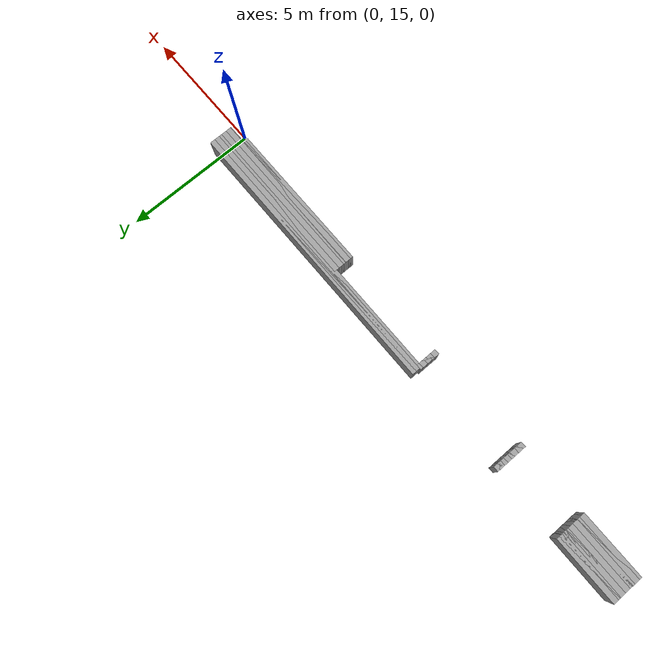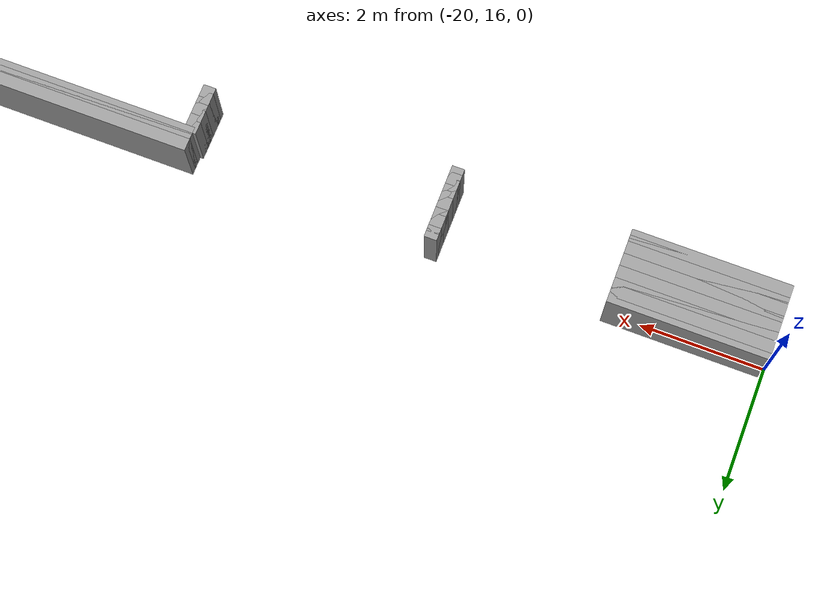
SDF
<sdf version="1.6">
 <world name="GridMap">
  <model name="GridMap">
   <link name="Wall_(146.5,152.0)">
    <collision name="Wall_(146.5,152.0)_Collision">
     <geometry><box><size>0.2 0.2 1.0</size></box></geometry>
     <pose>-14.65 15.2 0.5 0 -0 0</pose>
    </collision>
    <visual name="Wall_(146.5,152.0)_Visual">
     <geometry><box><size>0.2 0.2 1.0</size></box></geometry>
     <pose>-14.65 15.2 0.5 0 -0 0</pose>
     <material>
      <script><uri>file://media/materials/scripts/gazebo.material</uri><name>Gazebo/Grey</name></script>
      <ambient>1 1 1 1</ambient>
     </material>
     <meta><layer>0</layer></meta>
    </visual>
    <pose>0 0 0.5 0 -0 0</pose>
   </link>
   <link name="Wall_(186.5,152.0)">
    <collision name="Wall_(186.5,152.0)_Collision">
     <geometry><box><size>2.5 0.2 1.0</size></box></geometry>
     <pose>-18.65 15.2 0.5 0 -0 0</pose>
    </collision>
    <visual name="Wall_(186.5,152.0)_Visual">
     <geometry><box><size>2.5 0.2 1.0</size></box></geometry>
     <pose>-18.65 15.2 0.5 0 -0 0</pose>
     <material>
      <script><uri>file://media/materials/scripts/gazebo.material</uri><name>Gazebo/Grey</name></script>
      <ambient>1 1 1 1</ambient>
     </material>
     <meta><layer>0</layer></meta>
    </visual>
    <pose>0 0 0.5 0 -0 0</pose>
   </link>
   <link name="Wall_(32.0,153.0)">
    <collision name="Wall_(32.0,153.0)_Collision">
     <geometry><box><size>6.4 0.2 1.0</size></box></geometry>
     <pose>-3.2 15.3 0.5 0 -0 0</pose>
    </collision>
    <visual name="Wall_(32.0,153.0)_Visual">
     <geometry><box><size>6.4 0.2 1.0</size></box></geometry>
     <pose>-3.2 15.3 0.5 0 -0 0</pose>
     <material>
      <script><uri>file://media/materials/scripts/gazebo.material</uri><name>Gazebo/Grey</name></script>
      <ambient>1 1 1 1</ambient>
     </material>
     <meta><layer>0</layer></meta>
    </visual>
    <pose>0 0 0.5 0 -0 0</pose>
   </link>
   <link name="Wall_(106.5,153.0)">
    <collision name="Wall_(106.5,153.0)_Collision">
     <geometry><box><size>0.2 0.2 1.0</size></box></geometry>
     <pose>-10.65 15.3 0.5 0 -0 0</pose>
    </collision>
    <visual name="Wall_(106.5,153.0)_Visual">
     <geometry><box><size>0.2 0.2 1.0</size></box></geometry>
     <pose>-10.65 15.3 0.5 0 -0 0</pose>
     <material>
      <script><uri>file://media/materials/scripts/gazebo.material</uri><name>Gazebo/Grey</name></script>
      <ambient>1 1 1 1</ambient>
     </material>
     <meta><layer>0</layer></meta>
    </visual>
    <pose>0 0 0.5 0 -0 0</pose>
   </link>
   <link name="Wall_(146.5,153.0)">
    <collision name="Wall_(146.5,153.0)_Collision">
     <geometry><box><size>0.2 0.2 1.0</size></box></geometry>
     <pose>-14.65 15.3 0.5 0 -0 0</pose>
    </collision>
    <visual name="Wall_(146.5,153.0)_Visual">
     <geometry><box><size>0.2 0.2 1.0</size></box></geometry>
     <pose>-14.65 15.3 0.5 0 -0 0</pose>
     <material>
      <script><uri>file://media/materials/scripts/gazebo.material</uri><name>Gazebo/Grey</name></script>
      <ambient>1 1 1 1</ambient>
     </material>
     <meta><layer>0</layer></meta>
    </visual>
    <pose>0 0 0.5 0 -0 0</pose>
   </link>
   <link name="Wall_(186.5,153.0)">
    <collision name="Wall_(186.5,153.0)_Collision">
     <geometry><box><size>2.5 0.2 1.0</size></box></geometry>
     <pose>-18.65 15.3 0.5 0 -0 0</pose>
    </collision>
    <visual name="Wall_(186.5,153.0)_Visual">
     <geometry><box><size>2.5 0.2 1.0</size></box></geometry>
     <pose>-18.65 15.3 0.5 0 -0 0</pose>
     <material>
      <script><uri>file://media/materials/scripts/gazebo.material</uri><name>Gazebo/Grey</name></script>
      <ambient>1 1 1 1</ambient>
     </material>
     <meta><layer>0</layer></meta>
    </visual>
    <pose>0 0 0.5 0 -0 0</pose>
   </link>
   <link name="Wall_(32.0,154.0)">
    <collision name="Wall_(32.0,154.0)_Collision">
     <geometry><box><size>6.4 0.2 1.0</size></box></geometry>
     <pose>-3.2 15.4 0.5 0 -0 0</pose>
    </collision>
    <visual name="Wall_(32.0,154.0)_Visual">
     <geometry><box><size>6.4 0.2 1.0</size></box></geometry>
     <pose>-3.2 15.4 0.5 0 -0 0</pose>
     <material>
      <script><uri>file://media/materials/scripts/gazebo.material</uri><name>Gazebo/Grey</name></script>
      <ambient>1 1 1 1</ambient>
     </material>
     <meta><layer>0</layer></meta>
    </visual>
    <pose>0 0 0.5 0 -0 0</pose>
   </link>
   <link name="Wall_(106.5,154.0)">
    <collision name="Wall_(106.5,154.0)_Collision">
     <geometry><box><size>0.2 0.2 1.0</size></box></geometry>
     <pose>-10.65 15.4 0.5 0 -0 0</pose>
    </collision>
    <visual name="Wall_(106.5,154.0)_Visual">
     <geometry><box><size>0.2 0.2 1.0</size></box></geometry>
     <pose>-10.65 15.4 0.5 0 -0 0</pose>
     <material>
      <script><uri>file://media/materials/scripts/gazebo.material</uri><name>Gazebo/Grey</name></script>
      <ambient>1 1 1 1</ambient>
     </material>
     <meta><layer>0</layer></meta>
    </visual>
    <pose>0 0 0.5 0 -0 0</pose>
   </link>
   <link name="Wall_(146.5,154.0)">
    <collision name="Wall_(146.5,154.0)_Collision">
     <geometry><box><size>0.2 0.2 1.0</size></box></geometry>
     <pose>-14.65 15.4 0.5 0 -0 0</pose>
    </collision>
    <visual name="Wall_(146.5,154.0)_Visual">
     <geometry><box><size>0.2 0.2 1.0</size></box></geometry>
     <pose>-14.65 15.4 0.5 0 -0 0</pose>
     <material>
      <script><uri>file://media/materials/scripts/gazebo.material</uri><name>Gazebo/Grey</name></script>
      <ambient>1 1 1 1</ambient>
     </material>
     <meta><layer>0</layer></meta>
    </visual>
    <pose>0 0 0.5 0 -0 0</pose>
   </link>
   <link name="Wall_(186.5,154.0)">
    <collision name="Wall_(186.5,154.0)_Collision">
     <geometry><box><size>2.5 0.2 1.0</size></box></geometry>
     <pose>-18.65 15.4 0.5 0 -0 0</pose>
    </collision>
    <visual name="Wall_(186.5,154.0)_Visual">
     <geometry><box><size>2.5 0.2 1.0</size></box></geometry>
     <pose>-18.65 15.4 0.5 0 -0 0</pose>
     <material>
      <script><uri>file://media/materials/scripts/gazebo.material</uri><name>Gazebo/Grey</name></script>
      <ambient>1 1 1 1</ambient>
     </material>
     <meta><layer>0</layer></meta>
    </visual>
    <pose>0 0 0.5 0 -0 0</pose>
   </link>
   <link name="Wall_(32.0,155.0)">
    <collision name="Wall_(32.0,155.0)_Collision">
     <geometry><box><size>6.4 0.2 1.0</size></box></geometry>
     <pose>-3.2 15.5 0.5 0 -0 0</pose>
    </collision>
    <visual name="Wall_(32.0,155.0)_Visual">
     <geometry><box><size>6.4 0.2 1.0</size></box></geometry>
     <pose>-3.2 15.5 0.5 0 -0 0</pose>
     <material>
      <script><uri>file://media/materials/scripts/gazebo.material</uri><name>Gazebo/Grey</name></script>
      <ambient>1 1 1 1</ambient>
     </material>
     <meta><layer>0</layer></meta>
    </visual>
    <pose>0 0 0.5 0 -0 0</pose>
   </link>
   <link name="Wall_(106.5,155.0)">
    <collision name="Wall_(106.5,155.0)_Collision">
     <geometry><box><size>0.2 0.2 1.0</size></box></geometry>
     <pose>-10.65 15.5 0.5 0 -0 0</pose>
    </collision>
    <visual name="Wall_(106.5,155.0)_Visual">
     <geometry><box><size>0.2 0.2 1.0</size></box></geometry>
     <pose>-10.65 15.5 0.5 0 -0 0</pose>
     <material>
      <script><uri>file://media/materials/scripts/gazebo.material</uri><name>Gazebo/Grey</name></script>
      <ambient>1 1 1 1</ambient>
     </material>
     <meta><layer>0</layer></meta>
    </visual>
    <pose>0 0 0.5 0 -0 0</pose>
   </link>
   <link name="Wall_(146.5,155.0)">
    <collision name="Wall_(146.5,155.0)_Collision">
     <geometry><box><size>0.2 0.2 1.0</size></box></geometry>
     <pose>-14.65 15.5 0.5 0 -0 0</pose>
    </collision>
    <visual name="Wall_(146.5,155.0)_Visual">
     <geometry><box><size>0.2 0.2 1.0</size></box></geometry>
     <pose>-14.65 15.5 0.5 0 -0 0</pose>
     <material>
      <script><uri>file://media/materials/scripts/gazebo.material</uri><name>Gazebo/Grey</name></script>
      <ambient>1 1 1 1</ambient>
     </material>
     <meta><layer>0</layer></meta>
    </visual>
    <pose>0 0 0.5 0 -0 0</pose>
   </link>
   <link name="Wall_(186.5,155.0)">
    <collision name="Wall_(186.5,155.0)_Collision">
     <geometry><box><size>2.5 0.2 1.0</size></box></geometry>
     <pose>-18.65 15.5 0.5 0 -0 0</pose>
    </collision>
    <visual name="Wall_(186.5,155.0)_Visual">
     <geometry><box><size>2.5 0.2 1.0</size></box></geometry>
     <pose>-18.65 15.5 0.5 0 -0 0</pose>
     <material>
      <script><uri>file://media/materials/scripts/gazebo.material</uri><name>Gazebo/Grey</name></script>
      <ambient>1 1 1 1</ambient>
     </material>
     <meta><layer>0</layer></meta>
    </visual>
    <pose>0 0 0.5 0 -0 0</pose>
   </link>
   <link name="Wall_(32.0,156.0)">
    <collision name="Wall_(32.0,156.0)_Collision">
     <geometry><box><size>6.4 0.2 1.0</size></box></geometry>
     <pose>-3.2 15.6 0.5 0 -0 0</pose>
    </collision>
    <visual name="Wall_(32.0,156.0)_Visual">
     <geometry><box><size>6.4 0.2 1.0</size></box></geometry>
     <pose>-3.2 15.6 0.5 0 -0 0</pose>
     <material>
      <script><uri>file://media/materials/scripts/gazebo.material</uri><name>Gazebo/Grey</name></script>
      <ambient>1 1 1 1</ambient>
     </material>
     <meta><layer>0</layer></meta>
    </visual>
    <pose>0 0 0.5 0 -0 0</pose>
   </link>
   <link name="Wall_(106.5,156.0)">
    <collision name="Wall_(106.5,156.0)_Collision">
     <geometry><box><size>0.2 0.2 1.0</size></box></geometry>
     <pose>-10.65 15.6 0.5 0 -0 0</pose>
    </collision>
    <visual name="Wall_(106.5,156.0)_Visual">
     <geometry><box><size>0.2 0.2 1.0</size></box></geometry>
     <pose>-10.65 15.6 0.5 0 -0 0</pose>
     <material>
      <script><uri>file://media/materials/scripts/gazebo.material</uri><name>Gazebo/Grey</name></script>
      <ambient>1 1 1 1</ambient>
     </material>
     <meta><layer>0</layer></meta>
    </visual>
    <pose>0 0 0.5 0 -0 0</pose>
   </link>
   <link name="Wall_(146.5,156.0)">
    <collision name="Wall_(146.5,156.0)_Collision">
     <geometry><box><size>0.2 0.2 1.0</size></box></geometry>
     <pose>-14.65 15.6 0.5 0 -0 0</pose>
    </collision>
    <visual name="Wall_(146.5,156.0)_Visual">
     <geometry><box><size>0.2 0.2 1.0</size></box></geometry>
     <pose>-14.65 15.6 0.5 0 -0 0</pose>
     <material>
      <script><uri>file://media/materials/scripts/gazebo.material</uri><name>Gazebo/Grey</name></script>
      <ambient>1 1 1 1</ambient>
     </material>
     <meta><layer>0</layer></meta>
    </visual>
    <pose>0 0 0.5 0 -0 0</pose>
   </link>
   <link name="Wall_(186.5,156.0)">
    <collision name="Wall_(186.5,156.0)_Collision">
     <geometry><box><size>2.5 0.2 1.0</size></box></geometry>
     <pose>-18.65 15.6 0.5 0 -0 0</pose>
    </collision>
    <visual name="Wall_(186.5,156.0)_Visual">
     <geometry><box><size>2.5 0.2 1.0</size></box></geometry>
     <pose>-18.65 15.6 0.5 0 -0 0</pose>
     <material>
      <script><uri>file://media/materials/scripts/gazebo.material</uri><name>Gazebo/Grey</name></script>
      <ambient>1 1 1 1</ambient>
     </material>
     <meta><layer>0</layer></meta>
    </visual>
    <pose>0 0 0.5 0 -0 0</pose>
   </link>
   <link name="Wall_(32.0,157.0)">
    <collision name="Wall_(32.0,157.0)_Collision">
     <geometry><box><size>6.4 0.2 1.0</size></box></geometry>
     <pose>-3.2 15.7 0.5 0 -0 0</pose>
    </collision>
    <visual name="Wall_(32.0,157.0)_Visual">
     <geometry><box><size>6.4 0.2 1.0</size></box></geometry>
     <pose>-3.2 15.7 0.5 0 -0 0</pose>
     <material>
      <script><uri>file://media/materials/scripts/gazebo.material</uri><name>Gazebo/Grey</name></script>
      <ambient>1 1 1 1</ambient>
     </material>
     <meta><layer>0</layer></meta>
    </visual>
    <pose>0 0 0.5 0 -0 0</pose>
   </link>
   <link name="Wall_(106.5,157.0)">
    <collision name="Wall_(106.5,157.0)_Collision">
     <geometry><box><size>0.2 0.2 1.0</size></box></geometry>
     <pose>-10.65 15.7 0.5 0 -0 0</pose>
    </collision>
    <visual name="Wall_(106.5,157.0)_Visual">
     <geometry><box><size>0.2 0.2 1.0</size></box></geometry>
     <pose>-10.65 15.7 0.5 0 -0 0</pose>
     <material>
      <script><uri>file://media/materials/scripts/gazebo.material</uri><name>Gazebo/Grey</name></script>
      <ambient>1 1 1 1</ambient>
     </material>
     <meta><layer>0</layer></meta>
    </visual>
    <pose>0 0 0.5 0 -0 0</pose>
   </link>
   <link name="Wall_(146.5,157.0)">
    <collision name="Wall_(146.5,157.0)_Collision">
     <geometry><box><size>0.2 0.2 1.0</size></box></geometry>
     <pose>-14.65 15.7 0.5 0 -0 0</pose>
    </collision>
    <visual name="Wall_(146.5,157.0)_Visual">
     <geometry><box><size>0.2 0.2 1.0</size></box></geometry>
     <pose>-14.65 15.7 0.5 0 -0 0</pose>
     <material>
      <script><uri>file://media/materials/scripts/gazebo.material</uri><name>Gazebo/Grey</name></script>
      <ambient>1 1 1 1</ambient>
     </material>
     <meta><layer>0</layer></meta>
    </visual>
    <pose>0 0 0.5 0 -0 0</pose>
   </link>
   <link name="Wall_(186.5,157.0)">
    <collision name="Wall_(186.5,157.0)_Collision">
     <geometry><box><size>2.5 0.2 1.0</size></box></geometry>
     <pose>-18.65 15.7 0.5 0 -0 0</pose>
    </collision>
    <visual name="Wall_(186.5,157.0)_Visual">
     <geometry><box><size>2.5 0.2 1.0</size></box></geometry>
     <pose>-18.65 15.7 0.5 0 -0 0</pose>
     <material>
      <script><uri>file://media/materials/scripts/gazebo.material</uri><name>Gazebo/Grey</name></script>
      <ambient>1 1 1 1</ambient>
     </material>
     <meta><layer>0</layer></meta>
    </visual>
    <pose>0 0 0.5 0 -0 0</pose>
   </link>
   <link name="Wall_(32.0,158.0)">
    <collision name="Wall_(32.0,158.0)_Collision">
     <geometry><box><size>6.4 0.2 1.0</size></box></geometry>
     <pose>-3.2 15.8 0.5 0 -0 0</pose>
    </collision>
    <visual name="Wall_(32.0,158.0)_Visual">
     <geometry><box><size>6.4 0.2 1.0</size></box></geometry>
     <pose>-3.2 15.8 0.5 0 -0 0</pose>
     <material>
      <script><uri>file://media/materials/scripts/gazebo.material</uri><name>Gazebo/Grey</name></script>
      <ambient>1 1 1 1</ambient>
     </material>
     <meta><layer>0</layer></meta>
    </visual>
    <pose>0 0 0.5 0 -0 0</pose>
   </link>
   <link name="Wall_(106.5,158.0)">
    <collision name="Wall_(106.5,158.0)_Collision">
     <geometry><box><size>0.2 0.2 1.0</size></box></geometry>
     <pose>-10.65 15.8 0.5 0 -0 0</pose>
    </collision>
    <visual name="Wall_(106.5,158.0)_Visual">
     <geometry><box><size>0.2 0.2 1.0</size></box></geometry>
     <pose>-10.65 15.8 0.5 0 -0 0</pose>
     <material>
      <script><uri>file://media/materials/scripts/gazebo.material</uri><name>Gazebo/Grey</name></script>
      <ambient>1 1 1 1</ambient>
     </material>
     <meta><layer>0</layer></meta>
    </visual>
    <pose>0 0 0.5 0 -0 0</pose>
   </link>
   <link name="Wall_(146.5,158.0)">
    <collision name="Wall_(146.5,158.0)_Collision">
     <geometry><box><size>0.2 0.2 1.0</size></box></geometry>
     <pose>-14.65 15.8 0.5 0 -0 0</pose>
    </collision>
    <visual name="Wall_(146.5,158.0)_Visual">
     <geometry><box><size>0.2 0.2 1.0</size></box></geometry>
     <pose>-14.65 15.8 0.5 0 -0 0</pose>
     <material>
      <script><uri>file://media/materials/scripts/gazebo.material</uri><name>Gazebo/Grey</name></script>
      <ambient>1 1 1 1</ambient>
     </material>
     <meta><layer>0</layer></meta>
    </visual>
    <pose>0 0 0.5 0 -0 0</pose>
   </link>
   <link name="Wall_(186.5,158.0)">
    <collision name="Wall_(186.5,158.0)_Collision">
     <geometry><box><size>2.5 0.2 1.0</size></box></geometry>
     <pose>-18.65 15.8 0.5 0 -0 0</pose>
    </collision>
    <visual name="Wall_(186.5,158.0)_Visual">
     <geometry><box><size>2.5 0.2 1.0</size></box></geometry>
     <pose>-18.65 15.8 0.5 0 -0 0</pose>
     <material>
      <script><uri>file://media/materials/scripts/gazebo.material</uri><name>Gazebo/Grey</name></script>
      <ambient>1 1 1 1</ambient>
     </material>
     <meta><layer>0</layer></meta>
    </visual>
    <pose>0 0 0.5 0 -0 0</pose>
   </link>
   <link name="Wall_(32.0,159.0)">
    <collision name="Wall_(32.0,159.0)_Collision">
     <geometry><box><size>6.4 0.2 1.0</size></box></geometry>
     <pose>-3.2 15.9 0.5 0 -0 0</pose>
    </collision>
    <visual name="Wall_(32.0,159.0)_Visual">
     <geometry><box><size>6.4 0.2 1.0</size></box></geometry>
     <pose>-3.2 15.9 0.5 0 -0 0</pose>
     <material>
      <script><uri>file://media/materials/scripts/gazebo.material</uri><name>Gazebo/Grey</name></script>
      <ambient>1 1 1 1</ambient>
     </material>
     <meta><layer>0</layer></meta>
    </visual>
    <pose>0 0 0.5 0 -0 0</pose>
   </link>
   <link name="Wall_(106.5,159.0)">
    <collision name="Wall_(106.5,159.0)_Collision">
     <geometry><box><size>0.2 0.2 1.0</size></box></geometry>
     <pose>-10.65 15.9 0.5 0 -0 0</pose>
    </collision>
    <visual name="Wall_(106.5,159.0)_Visual">
     <geometry><box><size>0.2 0.2 1.0</size></box></geometry>
     <pose>-10.65 15.9 0.5 0 -0 0</pose>
     <material>
      <script><uri>file://media/materials/scripts/gazebo.material</uri><name>Gazebo/Grey</name></script>
      <ambient>1 1 1 1</ambient>
     </material>
     <meta><layer>0</layer></meta>
    </visual>
    <pose>0 0 0.5 0 -0 0</pose>
   </link>
   <link name="Wall_(146.5,159.0)">
    <collision name="Wall_(146.5,159.0)_Collision">
     <geometry><box><size>0.2 0.2 1.0</size></box></geometry>
     <pose>-14.65 15.9 0.5 0 -0 0</pose>
    </collision>
    <visual name="Wall_(146.5,159.0)_Visual">
     <geometry><box><size>0.2 0.2 1.0</size></box></geometry>
     <pose>-14.65 15.9 0.5 0 -0 0</pose>
     <material>
      <script><uri>file://media/materials/scripts/gazebo.material</uri><name>Gazebo/Grey</name></script>
      <ambient>1 1 1 1</ambient>
     </material>
     <meta><layer>0</layer></meta>
    </visual>
    <pose>0 0 0.5 0 -0 0</pose>
   </link>
   <link name="Wall_(186.5,159.0)">
    <collision name="Wall_(186.5,159.0)_Collision">
     <geometry><box><size>2.5 0.2 1.0</size></box></geometry>
     <pose>-18.65 15.9 0.5 0 -0 0</pose>
    </collision>
    <visual name="Wall_(186.5,159.0)_Visual">
     <geometry><box><size>2.5 0.2 1.0</size></box></geometry>
     <pose>-18.65 15.9 0.5 0 -0 0</pose>
     <material>
      <script><uri>file://media/materials/scripts/gazebo.material</uri><name>Gazebo/Grey</name></script>
      <ambient>1 1 1 1</ambient>
     </material>
     <meta><layer>0</layer></meta>
    </visual>
    <pose>0 0 0.5 0 -0 0</pose>
   </link>
   <link name="Wall_(53.5,160.0)">
    <collision name="Wall_(53.5,160.0)_Collision">
     <geometry><box><size>10.7 0.2 1.0</size></box></geometry>
     <pose>-5.35 16.0 0.5 0 -0 0</pose>
    </collision>
    <visual name="Wall_(53.5,160.0)_Visual">
     <geometry><box><size>10.7 0.2 1.0</size></box></geometry>
     <pose>-5.35 16.0 0.5 0 -0 0</pose>
     <material>
      <script><uri>file://media/materials/scripts/gazebo.material</uri><name>Gazebo/Grey</name></script>
      <ambient>1 1 1 1</ambient>
     </material>
     <meta><layer>0</layer></meta>
    </visual>
    <pose>0 0 0.5 0 -0 0</pose>
   </link>
   <link name="Wall_(146.5,160.0)">
    <collision name="Wall_(146.5,160.0)_Collision">
     <geometry><box><size>0.2 0.2 1.0</size></box></geometry>
     <pose>-14.65 16.0 0.5 0 -0 0</pose>
    </collision>
    <visual name="Wall_(146.5,160.0)_Visual">
     <geometry><box><size>0.2 0.2 1.0</size></box></geometry>
     <pose>-14.65 16.0 0.5 0 -0 0</pose>
     <material>
      <script><uri>file://media/materials/scripts/gazebo.material</uri><name>Gazebo/Grey</name></script>
      <ambient>1 1 1 1</ambient>
     </material>
     <meta><layer>0</layer></meta>
    </visual>
    <pose>0 0 0.5 0 -0 0</pose>
   </link>
   <link name="Wall_(186.5,160.0)">
    <collision name="Wall_(186.5,160.0)_Collision">
     <geometry><box><size>2.5 0.2 1.0</size></box></geometry>
     <pose>-18.65 16.0 0.5 0 -0 0</pose>
    </collision>
    <visual name="Wall_(186.5,160.0)_Visual">
     <geometry><box><size>2.5 0.2 1.0</size></box></geometry>
     <pose>-18.65 16.0 0.5 0 -0 0</pose>
     <material>
      <script><uri>file://media/materials/scripts/gazebo.material</uri><name>Gazebo/Grey</name></script>
      <ambient>1 1 1 1</ambient>
     </material>
     <meta><layer>0</layer></meta>
    </visual>
    <pose>0 0 0.5 0 -0 0</pose>
   </link>
   <link name="Wall_(53.5,161.0)">
    <collision name="Wall_(53.5,161.0)_Collision">
     <geometry><box><size>10.7 0.2 1.0</size></box></geometry>
     <pose>-5.35 16.1 0.5 0 -0 0</pose>
    </collision>
    <visual name="Wall_(53.5,161.0)_Visual">
     <geometry><box><size>10.7 0.2 1.0</size></box></geometry>
     <pose>-5.35 16.1 0.5 0 -0 0</pose>
     <material>
      <script><uri>file://media/materials/scripts/gazebo.material</uri><name>Gazebo/Grey</name></script>
      <ambient>1 1 1 1</ambient>
     </material>
     <meta><layer>0</layer></meta>
    </visual>
    <pose>0 0 0.5 0 -0 0</pose>
   </link>
   <link name="Wall_(146.5,161.0)">
    <collision name="Wall_(146.5,161.0)_Collision">
     <geometry><box><size>0.2 0.2 1.0</size></box></geometry>
     <pose>-14.65 16.1 0.5 0 -0 0</pose>
    </collision>
    <visual name="Wall_(146.5,161.0)_Visual">
     <geometry><box><size>0.2 0.2 1.0</size></box></geometry>
     <pose>-14.65 16.1 0.5 0 -0 0</pose>
     <material>
      <script><uri>file://media/materials/scripts/gazebo.material</uri><name>Gazebo/Grey</name></script>
      <ambient>1 1 1 1</ambient>
     </material>
     <meta><layer>0</layer></meta>
    </visual>
    <pose>0 0 0.5 0 -0 0</pose>
   </link>
   <link name="Wall_(186.5,161.0)">
    <collision name="Wall_(186.5,161.0)_Collision">
     <geometry><box><size>2.5 0.2 1.0</size></box></geometry>
     <pose>-18.65 16.1 0.5 0 -0 0</pose>
    </collision>
    <visual name="Wall_(186.5,161.0)_Visual">
     <geometry><box><size>2.5 0.2 1.0</size></box></geometry>
     <pose>-18.65 16.1 0.5 0 -0 0</pose>
     <material>
      <script><uri>file://media/materials/scripts/gazebo.material</uri><name>Gazebo/Grey</name></script>
      <ambient>1 1 1 1</ambient>
     </material>
     <meta><layer>0</layer></meta>
    </visual>
    <pose>0 0 0.5 0 -0 0</pose>
   </link>
   <link name="Wall_(53.5,162.0)">
    <collision name="Wall_(53.5,162.0)_Collision">
     <geometry><box><size>10.7 0.2 1.0</size></box></geometry>
     <pose>-5.35 16.2 0.5 0 -0 0</pose>
    </collision>
    <visual name="Wall_(53.5,162.0)_Visual">
     <geometry><box><size>10.7 0.2 1.0</size></box></geometry>
     <pose>-5.35 16.2 0.5 0 -0 0</pose>
     <material>
      <script><uri>file://media/materials/scripts/gazebo.material</uri><name>Gazebo/Grey</name></script>
      <ambient>1 1 1 1</ambient>
     </material>
     <meta><layer>0</layer></meta>
    </visual>
    <pose>0 0 0.5 0 -0 0</pose>
   </link>
   <link name="Wall_(146.5,162.0)">
    <collision name="Wall_(146.5,162.0)_Collision">
     <geometry><box><size>0.2 0.2 1.0</size></box></geometry>
     <pose>-14.65 16.2 0.5 0 -0 0</pose>
    </collision>
    <visual name="Wall_(146.5,162.0)_Visual">
     <geometry><box><size>0.2 0.2 1.0</size></box></geometry>
     <pose>-14.65 16.2 0.5 0 -0 0</pose>
     <material>
      <script><uri>file://media/materials/scripts/gazebo.material</uri><name>Gazebo/Grey</name></script>
      <ambient>1 1 1 1</ambient>
     </material>
     <meta><layer>0</layer></meta>
    </visual>
    <pose>0 0 0.5 0 -0 0</pose>
   </link>
   <link name="Wall_(186.5,162.0)">
    <collision name="Wall_(186.5,162.0)_Collision">
     <geometry><box><size>2.5 0.2 1.0</size></box></geometry>
     <pose>-18.65 16.2 0.5 0 -0 0</pose>
    </collision>
    <visual name="Wall_(186.5,162.0)_Visual">
     <geometry><box><size>2.5 0.2 1.0</size></box></geometry>
     <pose>-18.65 16.2 0.5 0 -0 0</pose>
     <material>
      <script><uri>file://media/materials/scripts/gazebo.material</uri><name>Gazebo/Grey</name></script>
      <ambient>1 1 1 1</ambient>
     </material>
     <meta><layer>0</layer></meta>
    </visual>
    <pose>0 0 0.5 0 -0 0</pose>
   </link>
   <static>1</static>
  </model>
 </world>
</sdf>
